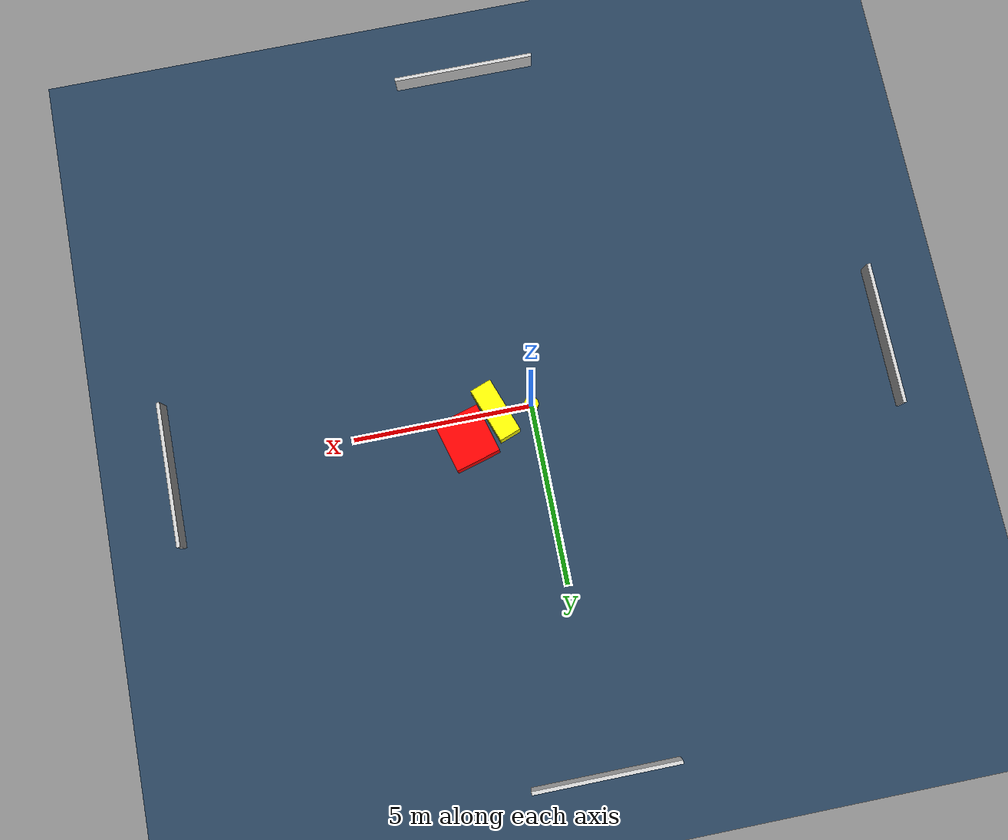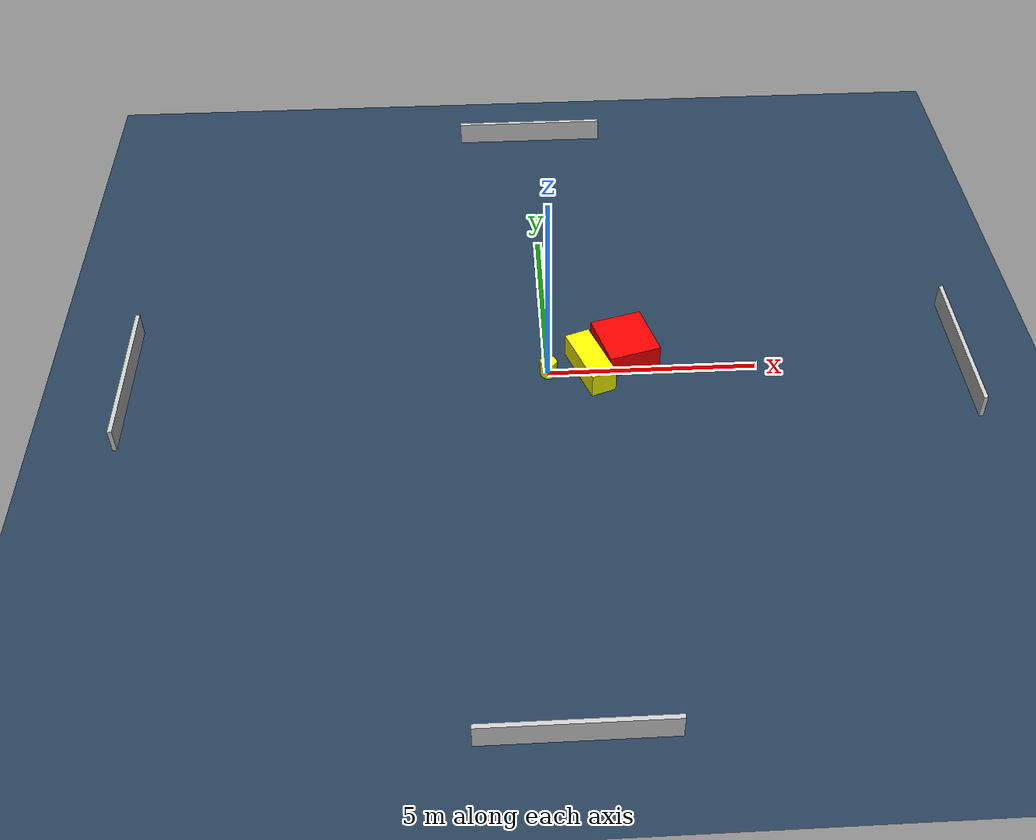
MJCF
<?xml version="1.0" ?>
<mujoco model="generated_environment">
  <option timestep="0.01" integrator="RK4" cone="elliptic"/>
  <default>
    <geom density="1"/>
  </default>
  <asset>
    <texture builtin="gradient" height="3072" name="skybox" rgb1="0.3 0.5 0.7" rgb2="0 0 0" type="skybox" width="512"/>
    <texture builtin="checker" height="300" name="groundplane" rgb1="0.2 0.3 0.4" rgb2="0.1 0.2 0.3" type="2d" width="300"/>
    <material name="groundplane" reflectance="0.2" texrepeat="5 5" texture="groundplane"/>
  </asset>
  <worldbody>
    <light dir="0 0 -1" directional="true" pos="0 0 1.5"/>
    <geom condim="3" friction="0.5 0.005 0.001" material="groundplane" name="floor" pos="0 0 0" size="0 0 0.05" type="plane"/>
    <body name="walls">
      <geom name="wall_1" condim="4" pos="-10.0 0.0 0.3" rgba="0.800000011920929 0.800000011920929 0.800000011920929 1.0" size="0.05 2.0 0.3" type="box"/>
      <geom name="wall_2" condim="4" pos="10.0 0.0 0.3" rgba="0.800000011920929 0.800000011920929 0.800000011920929 1.0" size="0.05 2.0 0.3" type="box"/>
      <geom name="wall_3" condim="4" pos="0.0 -10.0 0.3" rgba="0.800000011920929 0.800000011920929 0.800000011920929 1.0" size="2.0 0.05 0.3" type="box"/>
      <geom name="wall_4" condim="4" pos="0.0 10.0 0.3" rgba="0.800000011920929 0.800000011920929 0.800000011920929 1.0" size="2.0 0.05 0.3" type="box"/>
    </body>
    <body name="robot">
      <joint name="joint_x" type="slide" pos="0 0 0" axis="1 0 0"/>
      <joint name="joint_y" type="slide" pos="0 0 0" axis="0 1 0"/>
      <geom name="robot" type="cylinder" pos="0.0 0.0 0.2" size="0.2 0.2 0.0" mass="5.0" friction="1.0 0.005 0.0001" condim="4" rgba="1.0 1.0 0.0 1.0"/>
    </body>
    <body name="obstacle_1_movable">
      <geom name="obstacle_1_movable" condim="4" pos="1.0033891464420168 0.01082293989899399 0.3" euler="0 0 110.05715078885719" friction="0.0 0.005 0.001" rgba="1.0 1.0 0.0 1.0" size="0.7974216730799806 0.3103156278329006 0.3" type="box" mass="0.1"/>
      <joint type="free"/>
    </body>
    <body name="obstacle_2_static">
      <geom name="obstacle_2_static" condim="4" pos="1.8960766731432273 0.6070860691295652 0.3" euler="0 0 195.58785366407432" friction="0.0 0.005 0.001" rgba="1.0 0.0 0.0 1.0" size="0.6379923020803779 0.6996456948697523 0.3" type="box"/>
    </body>
  </worldbody>
  <actuator>
    <motor name="actuator_x" joint="joint_x" gear="1" ctrlrange="-1 1"/>
    <motor name="actuator_y" joint="joint_y" gear="1" ctrlrange="-1 1"/>
  </actuator>
</mujoco>
